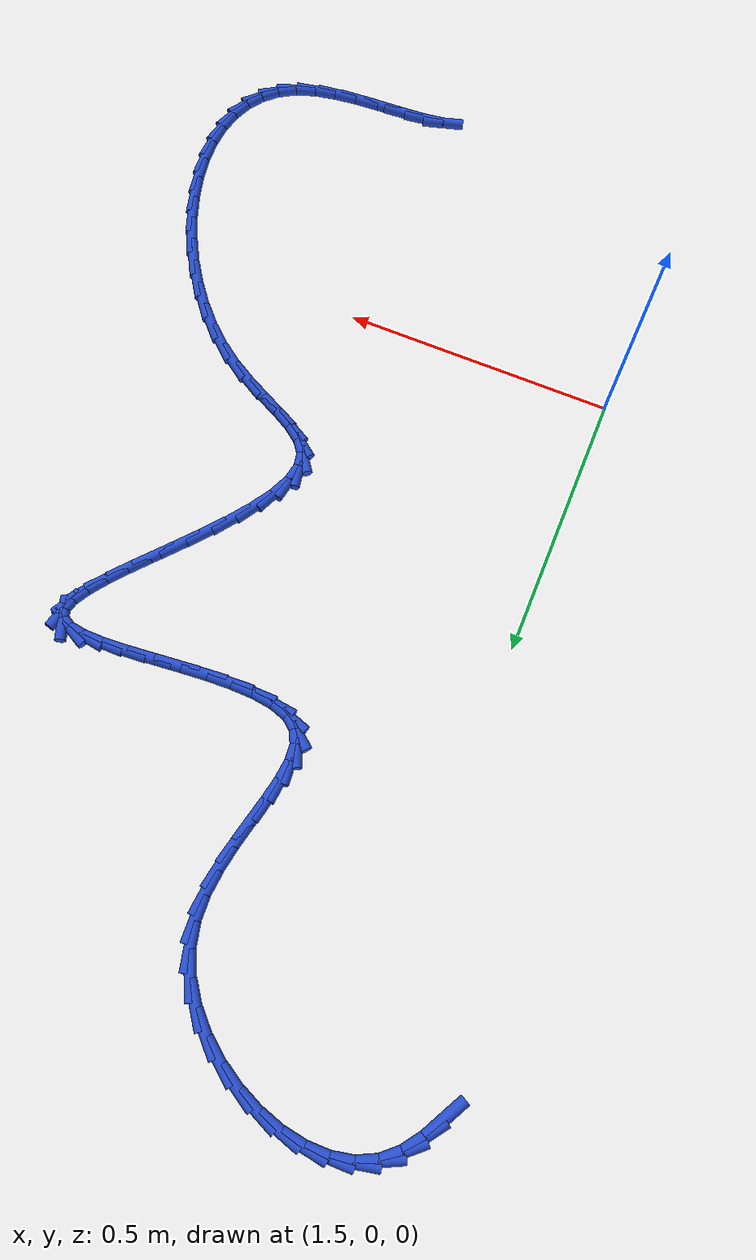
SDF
<sdf version="1.6">
 <world name="default">
  <model name="ground_plane">
   <static>1</static>
   <link name="link">
    <collision name="collision">
     <geometry><plane><normal>0 0 1</normal><size>100 100</size></plane></geometry>
     <surface><friction><ode><mu>100</mu><mu2>50</mu2></ode></friction></surface>
    </collision>
    <visual name="visual">
     <cast_shadows>0</cast_shadows>
     <geometry><plane><normal>0 0 1</normal><size>100 100</size></plane></geometry>
     <material>
      <script><uri>file://media/materials/scripts/gazebo.material</uri><name>Gazebo/WhiteGlow</name></script>
     </material>
    </visual>
   </link>
  </model>
  <model name="line">
   <link name="link_65">
    <pose>1.3440059701113316 1.2295875312424476 0.01 0 1.57 1.071464001234181</pose>
    <collision name="collision">
     <geometry><cylinder><radius>0.01</radius><length>0.08</length></cylinder></geometry>
    </collision>
    <visual name="visual">
     <material>
      <script><name>Gazebo/Blue</name><uri>file://media/materials/scripts/gazebo.material</uri></script>
     </material>
     <geometry><cylinder><radius>0.01</radius><length>0.08</length></cylinder></geometry>
    </visual>
   </link>
   <link name="link_66">
    <pose>1.363241693933876 1.2648542326269046 0.01 0 1.57 0.9397867354541178</pose>
    <collision name="collision">
     <geometry><cylinder><radius>0.01</radius><length>0.08</length></cylinder></geometry>
    </collision>
    <visual name="visual">
     <material>
      <script><name>Gazebo/Blue</name><uri>file://media/materials/scripts/gazebo.material</uri></script>
     </material>
     <geometry><cylinder><radius>0.01</radius><length>0.08</length></cylinder></geometry>
    </visual>
   </link>
   <link name="link_67">
    <pose>1.3858634243109487 1.2958148206921742 0.01 0 1.57 0.7262623180877601</pose>
    <collision name="collision">
     <geometry><cylinder><radius>0.01</radius><length>0.08</length></cylinder></geometry>
    </collision>
    <visual name="visual">
     <material>
      <script><name>Gazebo/Blue</name><uri>file://media/materials/scripts/gazebo.material</uri></script>
     </material>
     <geometry><cylinder><radius>0.01</radius><length>0.08</length></cylinder></geometry>
    </visual>
   </link>
   <link name="link_68">
    <pose>1.4132626971803164 1.3201510968237151 0.01 0 1.57 0.46096076140459136</pose>
    <collision name="collision">
     <geometry><cylinder><radius>0.01</radius><length>0.08</length></cylinder></geometry>
    </collision>
    <visual name="visual">
     <material>
      <script><name>Gazebo/Blue</name><uri>file://media/materials/scripts/gazebo.material</uri></script>
     </material>
     <geometry><cylinder><radius>0.01</radius><length>0.08</length></cylinder></geometry>
    </visual>
   </link>
   <link name="link_69">
    <pose>1.4460114517132718 1.3364156327488494 0.01 0 1.57 0.22544161819047126</pose>
    <collision name="collision">
     <geometry><cylinder><radius>0.01</radius><length>0.08</length></cylinder></geometry>
    </collision>
    <visual name="visual">
     <material>
      <script><name>Gazebo/Blue</name><uri>file://media/materials/scripts/gazebo.material</uri></script>
     </material>
     <geometry><cylinder><radius>0.01</radius><length>0.08</length></cylinder></geometry>
    </visual>
   </link>
   <link name="link_70">
    <pose>1.4830379563795635 1.3449072975904528 0.01 0 1.57 0.030618090259909747</pose>
    <collision name="collision">
     <geometry><cylinder><radius>0.01</radius><length>0.08</length></cylinder></geometry>
    </collision>
    <visual name="visual">
     <material>
      <script><name>Gazebo/Blue</name><uri>file://media/materials/scripts/gazebo.material</uri></script>
     </material>
     <geometry><cylinder><radius>0.01</radius><length>0.08</length></cylinder></geometry>
    </visual>
   </link>
   <link name="link_71">
    <pose>1.5230741828160899 1.346133513588298 0.01 0 1.57 -0.13164412909860207</pose>
    <collision name="collision">
     <geometry><cylinder><radius>0.01</radius><length>0.08</length></cylinder></geometry>
    </collision>
    <visual name="visual">
     <material>
      <script><name>Gazebo/Blue</name><uri>file://media/materials/scripts/gazebo.material</uri></script>
     </material>
     <geometry><cylinder><radius>0.01</radius><length>0.08</length></cylinder></geometry>
    </visual>
   </link>
   <link name="link_72">
    <pose>1.5648521026597506 1.3406017029821578 0.01 0 1.57 -0.27195429950035854</pose>
    <collision name="collision">
     <geometry><cylinder><radius>0.01</radius><length>0.08</length></cylinder></geometry>
    </collision>
    <visual name="visual">
     <material>
      <script><name>Gazebo/Blue</name><uri>file://media/materials/scripts/gazebo.material</uri></script>
     </material>
     <geometry><cylinder><radius>0.01</radius><length>0.08</length></cylinder></geometry>
    </visual>
   </link>
   <link name="link_73">
    <pose>1.6071036875474451 1.328819288011805 0.01 0 1.57 -0.3999542624763496</pose>
    <collision name="collision">
     <geometry><cylinder><radius>0.01</radius><length>0.08</length></cylinder></geometry>
    </collision>
    <visual name="visual">
     <material>
      <script><name>Gazebo/Blue</name><uri>file://media/materials/scripts/gazebo.material</uri></script>
     </material>
     <geometry><cylinder><radius>0.01</radius><length>0.08</length></cylinder></geometry>
    </visual>
   </link>
   <link name="link_74">
    <pose>1.6485609091160724 1.3112936909170114 0.01 0 1.57 -0.5239174390987342</pose>
    <collision name="collision">
     <geometry><cylinder><radius>0.01</radius><length>0.08</length></cylinder></geometry>
    </collision>
    <visual name="visual">
     <material>
      <script><name>Gazebo/Blue</name><uri>file://media/materials/scripts/gazebo.material</uri></script>
     </material>
     <geometry><cylinder><radius>0.01</radius><length>0.08</length></cylinder></geometry>
    </visual>
   </link>
   <link name="link_75">
    <pose>1.6879557390025315 1.2885323339375512 0.01 0 1.57 -0.6512880748055878</pose>
    <collision name="collision">
     <geometry><cylinder><radius>0.01</radius><length>0.08</length></cylinder></geometry>
    </collision>
    <visual name="visual">
     <material>
      <script><name>Gazebo/Blue</name><uri>file://media/materials/scripts/gazebo.material</uri></script>
     </material>
     <geometry><cylinder><radius>0.01</radius><length>0.08</length></cylinder></geometry>
    </visual>
   </link>
   <link name="link_76">
    <pose>1.7240201488437221 1.2610426393131962 0.01 0 1.57 -0.7892706016778485</pose>
    <collision name="collision">
     <geometry><cylinder><radius>0.01</radius><length>0.08</length></cylinder></geometry>
    </collision>
    <visual name="visual">
     <material>
      <script><name>Gazebo/Blue</name><uri>file://media/materials/scripts/gazebo.material</uri></script>
     </material>
     <geometry><cylinder><radius>0.01</radius><length>0.08</length></cylinder></geometry>
    </visual>
   </link>
   <link name="link_77">
    <pose>1.7554861102765438 1.2293320292837195 0.01 0 1.57 -0.9450254512287154</pose>
    <collision name="collision">
     <geometry><cylinder><radius>0.01</radius><length>0.08</length></cylinder></geometry>
    </collision>
    <visual name="visual">
     <material>
      <script><name>Gazebo/Blue</name><uri>file://media/materials/scripts/gazebo.material</uri></script>
     </material>
     <geometry><cylinder><radius>0.01</radius><length>0.08</length></cylinder></geometry>
    </visual>
   </link>
   <link name="link_78">
    <pose>1.7810855949378952 1.1939079260888925 0.01 0 1.57 -1.1249082423948167</pose>
    <collision name="collision">
     <geometry><cylinder><radius>0.01</radius><length>0.08</length></cylinder></geometry>
    </collision>
    <visual name="visual">
     <material>
      <script><name>Gazebo/Blue</name><uri>file://media/materials/scripts/gazebo.material</uri></script>
     </material>
     <geometry><cylinder><radius>0.01</radius><length>0.08</length></cylinder></geometry>
    </visual>
   </link>
   <link name="link_79">
    <pose>1.7995505744646758 1.1552777519684896 0.01 0 1.57 -1.3299193650254884</pose>
    <collision name="collision">
     <geometry><cylinder><radius>0.01</radius><length>0.08</length></cylinder></geometry>
    </collision>
    <visual name="visual">
     <material>
      <script><name>Gazebo/Blue</name><uri>file://media/materials/scripts/gazebo.material</uri></script>
     </material>
     <geometry><cylinder><radius>0.01</radius><length>0.08</length></cylinder></geometry>
    </visual>
   </link>
   <link name="link_80">
    <pose>1.8096997315609469 1.1139616250820863 0.01 0 1.57 -1.5176556041643143</pose>
    <collision name="collision">
     <geometry><cylinder><radius>0.01</radius><length>0.08</length></cylinder></geometry>
    </collision>
    <visual name="visual">
     <material>
      <script><name>Gazebo/Blue</name><uri>file://media/materials/scripts/gazebo.material</uri></script>
     </material>
     <geometry><cylinder><radius>0.01</radius><length>0.08</length></cylinder></geometry>
    </visual>
   </link>
   <link name="link_81">
    <pose>1.8119997373898793 1.070720956079347 0.01 0 1.57 1.4893560216095236</pose>
    <collision name="collision">
     <geometry><cylinder><radius>0.01</radius><length>0.08</length></cylinder></geometry>
    </collision>
    <visual name="visual">
     <material>
      <script><name>Gazebo/Blue</name><uri>file://media/materials/scripts/gazebo.material</uri></script>
     </material>
     <geometry><cylinder><radius>0.01</radius><length>0.08</length></cylinder></geometry>
    </visual>
   </link>
   <link name="link_82">
    <pose>1.808393099252843 1.0265332421818918 0.01 0 1.57 1.4021158363045525</pose>
    <collision name="collision">
     <geometry><cylinder><radius>0.01</radius><length>0.08</length></cylinder></geometry>
    </collision>
    <visual name="visual">
     <material>
      <script><name>Gazebo/Blue</name><uri>file://media/materials/scripts/gazebo.material</uri></script>
     </material>
     <geometry><cylinder><radius>0.01</radius><length>0.08</length></cylinder></geometry>
    </visual>
   </link>
   <link name="link_83">
    <pose>1.8008744736161992 0.9823836161028437 0.01 0 1.57 1.3553931428601542</pose>
    <collision name="collision">
     <geometry><cylinder><radius>0.01</radius><length>0.08</length></cylinder></geometry>
    </collision>
    <visual name="visual">
     <material>
      <script><name>Gazebo/Blue</name><uri>file://media/materials/scripts/gazebo.material</uri></script>
     </material>
     <geometry><cylinder><radius>0.01</radius><length>0.08</length></cylinder></geometry>
    </visual>
   </link>
   <link name="link_84">
    <pose>1.7914385169463074 0.9392572105553249 0.01 0 1.57 1.347004791097172</pose>
    <collision name="collision">
     <geometry><cylinder><radius>0.01</radius><length>0.08</length></cylinder></geometry>
    </collision>
    <visual name="visual">
     <material>
      <script><name>Gazebo/Blue</name><uri>file://media/materials/scripts/gazebo.material</uri></script>
     </material>
     <geometry><cylinder><radius>0.01</radius><length>0.08</length></cylinder></geometry>
    </visual>
   </link>
   <link name="link_85">
    <pose>1.7820798857095277 0.8981391582524569 0.01 0 1.57 1.3819464842967895</pose>
    <collision name="collision">
     <geometry><cylinder><radius>0.01</radius><length>0.08</length></cylinder></geometry>
    </collision>
    <visual name="visual">
     <material>
      <script><name>Gazebo/Blue</name><uri>file://media/materials/scripts/gazebo.material</uri></script>
     </material>
     <geometry><cylinder><radius>0.01</radius><length>0.08</length></cylinder></geometry>
    </visual>
   </link>
   <link name="link_86">
    <pose>1.7747932363722199 0.8600145919073635 0.01 0 1.57 1.476772969013434</pose>
    <collision name="collision">
     <geometry><cylinder><radius>0.01</radius><length>0.08</length></cylinder></geometry>
    </collision>
    <visual name="visual">
     <material>
      <script><name>Gazebo/Blue</name><uri>file://media/materials/scripts/gazebo.material</uri></script>
     </material>
     <geometry><cylinder><radius>0.01</radius><length>0.08</length></cylinder></geometry>
    </visual>
   </link>
   <link name="link_87">
    <pose>1.7715732254007441 0.8258686442331665 0.01 0 1.57 -1.4737386410367566</pose>
    <collision name="collision">
     <geometry><cylinder><radius>0.01</radius><length>0.08</length></cylinder></geometry>
    </collision>
    <visual name="visual">
     <material>
      <script><name>Gazebo/Blue</name><uri>file://media/materials/scripts/gazebo.material</uri></script>
     </material>
     <geometry><cylinder><radius>0.01</radius><length>0.08</length></cylinder></geometry>
    </visual>
   </link>
   <link name="link_88">
    <pose>1.7744145092614603 0.7966864479429884 0.01 0 1.57 -1.1322261838844574</pose>
    <collision name="collision">
     <geometry><cylinder><radius>0.01</radius><length>0.08</length></cylinder></geometry>
    </collision>
    <visual name="visual">
     <material>
      <script><name>Gazebo/Blue</name><uri>file://media/materials/scripts/gazebo.material</uri></script>
     </material>
     <geometry><cylinder><radius>0.01</radius><length>0.08</length></cylinder></geometry>
    </visual>
   </link>
   <link name="link_89">
    <pose>1.7853117444207287 0.7734531357499514 0.01 0 1.57 -0.6679098580904314</pose>
    <collision name="collision">
     <geometry><cylinder><radius>0.01</radius><length>0.08</length></cylinder></geometry>
    </collision>
    <visual name="visual">
     <material>
      <script><name>Gazebo/Blue</name><uri>file://media/materials/scripts/gazebo.material</uri></script>
     </material>
     <geometry><cylinder><radius>0.01</radius><length>0.08</length></cylinder></geometry>
    </visual>
   </link>
   <link name="link_90">
    <pose>1.8060905565635705 0.7570616089696681 0.01 0 1.57 -0.314948800186184</pose>
    <collision name="collision">
     <geometry><cylinder><radius>0.01</radius><length>0.08</length></cylinder></geometry>
    </collision>
    <visual name="visual">
     <material>
      <script><name>Gazebo/Blue</name><uri>file://media/materials/scripts/gazebo.material</uri></script>
     </material>
     <geometry><cylinder><radius>0.01</radius><length>0.08</length></cylinder></geometry>
    </visual>
   </link>
   <link name="link_91">
    <pose>1.8363654415289654 0.7471982691656816 0.01 0 1.57 -0.11828600860329869</pose>
    <collision name="collision">
     <geometry><cylinder><radius>0.01</radius><length>0.08</length></cylinder></geometry>
    </collision>
    <visual name="visual">
     <material>
      <script><name>Gazebo/Blue</name><uri>file://media/materials/scripts/gazebo.material</uri></script>
     </material>
     <geometry><cylinder><radius>0.01</radius><length>0.08</length></cylinder></geometry>
    </visual>
   </link>
   <link name="link_92">
    <pose>1.8741980532000302 0.7427022119696332 0.01 0 1.57 -0.007076076054685737</pose>
    <collision name="collision">
     <geometry><cylinder><radius>0.01</radius><length>0.08</length></cylinder></geometry>
    </collision>
    <visual name="visual">
     <material>
      <script><name>Gazebo/Blue</name><uri>file://media/materials/scripts/gazebo.material</uri></script>
     </material>
     <geometry><cylinder><radius>0.01</radius><length>0.08</length></cylinder></geometry>
    </visual>
   </link>
   <link name="link_93">
    <pose>1.9176178490037747 0.7423949650641917 0.01 0 1.57 0.05740488401535658</pose>
    <collision name="collision">
     <geometry><cylinder><radius>0.01</radius><length>0.08</length></cylinder></geometry>
    </collision>
    <visual name="visual">
     <material>
      <script><name>Gazebo/Blue</name><uri>file://media/materials/scripts/gazebo.material</uri></script>
     </material>
     <geometry><cylinder><radius>0.01</radius><length>0.08</length></cylinder></geometry>
    </visual>
   </link>
   <link name="link_94">
    <pose>1.9646542863672065 0.7450980561320253 0.01 0 1.57 0.0928856098669356</pose>
    <collision name="collision">
     <geometry><cylinder><radius>0.01</radius><length>0.08</length></cylinder></geometry>
    </collision>
    <visual name="visual">
     <material>
      <script><name>Gazebo/Blue</name><uri>file://media/materials/scripts/gazebo.material</uri></script>
     </material>
     <geometry><cylinder><radius>0.01</radius><length>0.08</length></cylinder></geometry>
    </visual>
   </link>
   <link name="link_95">
    <pose>2.013336822717336 0.7496330128558019 0.01 0 1.57 0.10688135362952314</pose>
    <collision name="collision">
     <geometry><cylinder><radius>0.01</radius><length>0.08</length></cylinder></geometry>
    </collision>
    <visual name="visual">
     <material>
      <script><name>Gazebo/Blue</name><uri>file://media/materials/scripts/gazebo.material</uri></script>
     </material>
     <geometry><cylinder><radius>0.01</radius><length>0.08</length></cylinder></geometry>
    </visual>
   </link>
   <link name="link_96">
    <pose>2.061694915481173 0.7548213629181901 0.01 0 1.57 0.10089283233203485</pose>
    <collision name="collision">
     <geometry><cylinder><radius>0.01</radius><length>0.08</length></cylinder></geometry>
    </collision>
    <visual name="visual">
     <material>
      <script><name>Gazebo/Blue</name><uri>file://media/materials/scripts/gazebo.material</uri></script>
     </material>
     <geometry><cylinder><radius>0.01</radius><length>0.08</length></cylinder></geometry>
    </visual>
   </link>
   <link name="link_97">
    <pose>2.1077580220857257 0.759484634001858 0.01 0 1.57 0.07069279902162402</pose>
    <collision name="collision">
     <geometry><cylinder><radius>0.01</radius><length>0.08</length></cylinder></geometry>
    </collision>
    <visual name="visual">
     <material>
      <script><name>Gazebo/Blue</name><uri>file://media/materials/scripts/gazebo.material</uri></script>
     </material>
     <geometry><cylinder><radius>0.01</radius><length>0.08</length></cylinder></geometry>
    </visual>
   </link>
   <link name="link_98">
    <pose>2.1495555999580023 0.7624443537894733 0.01 0 1.57 0.0021848357424792716</pose>
    <collision name="collision">
     <geometry><cylinder><radius>0.01</radius><length>0.08</length></cylinder></geometry>
    </collision>
    <visual name="visual">
     <material>
      <script><name>Gazebo/Blue</name><uri>file://media/materials/scripts/gazebo.material</uri></script>
     </material>
     <geometry><cylinder><radius>0.01</radius><length>0.08</length></cylinder></geometry>
    </visual>
   </link>
   <link name="link_99">
    <pose>2.185117106525016 0.7625220499637051 0.01 0 1.57 -0.1445814167518586</pose>
    <collision name="collision">
     <geometry><cylinder><radius>0.01</radius><length>0.08</length></cylinder></geometry>
    </collision>
    <visual name="visual">
     <material>
      <script><name>Gazebo/Blue</name><uri>file://media/materials/scripts/gazebo.material</uri></script>
     </material>
     <geometry><cylinder><radius>0.01</radius><length>0.08</length></cylinder></geometry>
    </visual>
   </link>
   <link name="link_100">
    <pose>2.212471999213773 0.7585392502072209 0.01 0 1.57 -0.4926867113897798</pose>
    <collision name="collision">
     <geometry><cylinder><radius>0.01</radius><length>0.08</length></cylinder></geometry>
    </collision>
    <visual name="visual">
     <material>
      <script><name>Gazebo/Blue</name><uri>file://media/materials/scripts/gazebo.material</uri></script>
     </material>
     <geometry><cylinder><radius>0.01</radius><length>0.08</length></cylinder></geometry>
    </visual>
   </link>
   <link name="link_101">
    <pose>2.2296497354512836 0.7493174822026896 0.01 0 1.57 -1.2316263897419166</pose>
    <collision name="collision">
     <geometry><cylinder><radius>0.01</radius><length>0.08</length></cylinder></geometry>
    </collision>
    <visual name="visual">
     <material>
      <script><name>Gazebo/Blue</name><uri>file://media/materials/scripts/gazebo.material</uri></script>
     </material>
     <geometry><cylinder><radius>0.01</radius><length>0.08</length></cylinder></geometry>
    </visual>
   </link>
   <link name="link_102">
    <pose>2.235090158705952 0.7338969222604996 0.01 0 1.57 1.3220202351800385</pose>
    <collision name="collision">
     <geometry><cylinder><radius>0.01</radius><length>0.08</length></cylinder></geometry>
    </collision>
    <visual name="visual">
     <material>
      <script><name>Gazebo/Blue</name><uri>file://media/materials/scripts/gazebo.material</uri></script>
     </material>
     <geometry><cylinder><radius>0.01</radius><length>0.08</length></cylinder></geometry>
    </visual>
   </link>
   <link name="link_103">
    <pose>2.2296861978708193 0.7126247203881863 0.01 0 1.57 1.0683434454452658</pose>
    <collision name="collision">
     <geometry><cylinder><radius>0.01</radius><length>0.08</length></cylinder></geometry>
    </collision>
    <visual name="visual">
     <material>
      <script><name>Gazebo/Blue</name><uri>file://media/materials/scripts/gazebo.material</uri></script>
     </material>
     <geometry><cylinder><radius>0.01</radius><length>0.08</length></cylinder></geometry>
    </visual>
   </link>
   <link name="link_104">
    <pose>2.215238319729585 0.6863315516023765 0.01 0 1.57 0.952362570168784</pose>
    <collision name="collision">
     <geometry><cylinder><radius>0.01</radius><length>0.08</length></cylinder></geometry>
    </collision>
    <visual name="visual">
     <material>
      <script><name>Gazebo/Blue</name><uri>file://media/materials/scripts/gazebo.material</uri></script>
     </material>
     <geometry><cylinder><radius>0.01</radius><length>0.08</length></cylinder></geometry>
    </visual>
   </link>
   <link name="link_105">
    <pose>2.1935484556605 0.655848871237635 0.01 0 1.57 0.8950232547650269</pose>
    <collision name="collision">
     <geometry><cylinder><radius>0.01</radius><length>0.08</length></cylinder></geometry>
    </collision>
    <visual name="visual">
     <material>
      <script><name>Gazebo/Blue</name><uri>file://media/materials/scripts/gazebo.material</uri></script>
     </material>
     <geometry><cylinder><radius>0.01</radius><length>0.08</length></cylinder></geometry>
    </visual>
   </link>
   <link name="link_106">
    <pose>2.166418537041812 0.622008134628524 0.01 0 1.57 0.8686086356535746</pose>
    <collision name="collision">
     <geometry><cylinder><radius>0.01</radius><length>0.08</length></cylinder></geometry>
    </collision>
    <visual name="visual">
     <material>
      <script><name>Gazebo/Blue</name><uri>file://media/materials/scripts/gazebo.material</uri></script>
     </material>
     <geometry><cylinder><radius>0.01</radius><length>0.08</length></cylinder></geometry>
    </visual>
   </link>
   <link name="link_107">
    <pose>2.135650495251771 0.5856407971096065 0.01 0 1.57 0.8624844350576465</pose>
    <collision name="collision">
     <geometry><cylinder><radius>0.01</radius><length>0.08</length></cylinder></geometry>
    </collision>
    <visual name="visual">
     <material>
      <script><name>Gazebo/Blue</name><uri>file://media/materials/scripts/gazebo.material</uri></script>
     </material>
     <geometry><cylinder><radius>0.01</radius><length>0.08</length></cylinder></geometry>
    </visual>
   </link>
   <link name="link_108">
    <pose>2.103046261668626 0.5475783140154447 0.01 0 1.57 0.8730332361410955</pose>
    <collision name="collision">
     <geometry><cylinder><radius>0.01</radius><length>0.08</length></cylinder></geometry>
    </collision>
    <visual name="visual">
     <material>
      <script><name>Gazebo/Blue</name><uri>file://media/materials/scripts/gazebo.material</uri></script>
     </material>
     <geometry><cylinder><radius>0.01</radius><length>0.08</length></cylinder></geometry>
    </visual>
   </link>
   <link name="link_109">
    <pose>2.0704077676706256 0.5086521406806027 0.01 0 1.57 0.9007038979149533</pose>
    <collision name="collision">
     <geometry><cylinder><radius>0.01</radius><length>0.08</length></cylinder></geometry>
    </collision>
    <visual name="visual">
     <material>
      <script><name>Gazebo/Blue</name><uri>file://media/materials/scripts/gazebo.material</uri></script>
     </material>
     <geometry><cylinder><radius>0.01</radius><length>0.08</length></cylinder></geometry>
    </visual>
   </link>
   <link name="link_110">
    <pose>2.03953694463602 0.4696937324396433 0.01 0 1.57 0.9497723365709663</pose>
    <collision name="collision">
     <geometry><cylinder><radius>0.01</radius><length>0.08</length></cylinder></geometry>
    </collision>
    <visual name="visual">
     <material>
      <script><name>Gazebo/Blue</name><uri>file://media/materials/scripts/gazebo.material</uri></script>
     </material>
     <geometry><cylinder><radius>0.01</radius><length>0.08</length></cylinder></geometry>
    </visual>
   </link>
   <link name="link_111">
    <pose>2.012235723943058 0.431534544627129 0.01 0 1.57 1.030123643313595</pose>
    <collision name="collision">
     <geometry><cylinder><radius>0.01</radius><length>0.08</length></cylinder></geometry>
    </collision>
    <visual name="visual">
     <material>
      <script><name>Gazebo/Blue</name><uri>file://media/materials/scripts/gazebo.material</uri></script>
     </material>
     <geometry><cylinder><radius>0.01</radius><length>0.08</length></cylinder></geometry>
    </visual>
   </link>
   <link name="link_112">
    <pose>1.990306036969987 0.3950060325776223 0.01 0 1.57 1.1620337383163282</pose>
    <collision name="collision">
     <geometry><cylinder><radius>0.01</radius><length>0.08</length></cylinder></geometry>
    </collision>
    <visual name="visual">
     <material>
      <script><name>Gazebo/Blue</name><uri>file://media/materials/scripts/gazebo.material</uri></script>
     </material>
     <geometry><cylinder><radius>0.01</radius><length>0.08</length></cylinder></geometry>
    </visual>
   </link>
   <link name="link_113">
    <pose>1.9755498150950594 0.3609396516256874 0.01 0 1.57 1.3851053900525272</pose>
    <collision name="collision">
     <geometry><cylinder><radius>0.01</radius><length>0.08</length></cylinder></geometry>
    </collision>
    <visual name="visual">
     <material>
      <script><name>Gazebo/Blue</name><uri>file://media/materials/scripts/gazebo.material</uri></script>
     </material>
     <geometry><cylinder><radius>0.01</radius><length>0.08</length></cylinder></geometry>
    </visual>
   </link>
   <link name="link_114">
    <pose>1.9697689896965218 0.33016685710588667 0.01 0 1.57 -1.3859672125733546</pose>
    <collision name="collision">
     <geometry><cylinder><radius>0.01</radius><length>0.08</length></cylinder></geometry>
    </collision>
    <visual name="visual">
     <material>
      <script><name>Gazebo/Blue</name><uri>file://media/materials/scripts/gazebo.material</uri></script>
     </material>
     <geometry><cylinder><radius>0.01</radius><length>0.08</length></cylinder></geometry>
    </visual>
   </link>
   <link name="link_115">
    <pose>1.9747525410396194 0.3035115724765384 0.01 0 1.57 -0.9459441404367588</pose>
    <collision name="collision">
     <geometry><cylinder><radius>0.01</radius><length>0.08</length></cylinder></geometry>
    </collision>
    <visual name="visual">
     <material>
      <script><name>Gazebo/Blue</name><uri>file://media/materials/scripts/gazebo.material</uri></script>
     </material>
     <geometry><cylinder><radius>0.01</radius><length>0.08</length></cylinder></geometry>
    </visual>
   </link>
   <link name="link_116">
    <pose>1.9909681117844142 0.28102928134720817 0.01 0 1.57 -0.6577010027150647</pose>
    <collision name="collision">
     <geometry><cylinder><radius>0.01</radius><length>0.08</length></cylinder></geometry>
    </collision>
    <visual name="visual">
     <material>
      <script><name>Gazebo/Blue</name><uri>file://media/materials/scripts/gazebo.material</uri></script>
     </material>
     <geometry><cylinder><radius>0.01</radius><length>0.08</length></cylinder></geometry>
    </visual>
   </link>
   <link name="link_117">
    <pose>2.0164396888375453 0.2613543297996969 0.01 0 1.57 -0.5150271343413755</pose>
    <collision name="collision">
     <geometry><cylinder><radius>0.01</radius><length>0.08</length></cylinder></geometry>
    </collision>
    <visual name="visual">
     <material>
      <script><name>Gazebo/Blue</name><uri>file://media/materials/scripts/gazebo.material</uri></script>
     </material>
     <geometry><cylinder><radius>0.01</radius><length>0.08</length></cylinder></geometry>
    </visual>
   </link>
   <link name="link_118">
    <pose>2.048926881893507 0.2429673121538664 0.01 0 1.57 -0.463374482573851</pose>
    <collision name="collision">
     <geometry><cylinder><radius>0.01</radius><length>0.08</length></cylinder></geometry>
    </collision>
    <visual name="visual">
     <material>
      <script><name>Gazebo/Blue</name><uri>file://media/materials/scripts/gazebo.material</uri></script>
     </material>
     <geometry><cylinder><radius>0.01</radius><length>0.08</length></cylinder></geometry>
    </visual>
   </link>
   <link name="link_119">
    <pose>2.086189300646796 0.22434882272957785 0.01 0 1.57 -0.47306552905766897</pose>
    <collision name="collision">
     <geometry><cylinder><radius>0.01</radius><length>0.08</length></cylinder></geometry>
    </collision>
    <visual name="visual">
     <material>
      <script><name>Gazebo/Blue</name><uri>file://media/materials/scripts/gazebo.material</uri></script>
     </material>
     <geometry><cylinder><radius>0.01</radius><length>0.08</length></cylinder></geometry>
    </visual>
   </link>
   <link name="link_120">
    <pose>2.125986554791905 0.20397945584669322 0.01 0 1.57 -0.532766664448061</pose>
    <collision name="collision">
     <geometry><cylinder><radius>0.01</radius><length>0.08</length></cylinder></geometry>
    </collision>
    <visual name="visual">
     <material>
      <script><name>Gazebo/Blue</name><uri>file://media/materials/scripts/gazebo.material</uri></script>
     </material>
     <geometry><cylinder><radius>0.01</radius><length>0.08</length></cylinder></geometry>
    </visual>
   </link>
   <link name="link_121">
    <pose>2.1660782540233297 0.18033980582507392 0.01 0 1.57 -0.6329355787849597</pose>
    <collision name="collision">
     <geometry><cylinder><radius>0.01</radius><length>0.08</length></cylinder></geometry>
    </collision>
    <visual name="visual">
     <material>
      <script><name>Gazebo/Blue</name><uri>file://media/materials/scripts/gazebo.material</uri></script>
     </material>
     <geometry><cylinder><radius>0.01</radius><length>0.08</length></cylinder></geometry>
    </visual>
   </link>
   <link name="link_122">
    <pose>2.2044664451903717 0.15217744017217352 0.01 0 1.57 -0.7346902154263425</pose>
    <collision name="collision">
     <geometry><cylinder><radius>0.01</radius><length>0.08</length></cylinder></geometry>
    </collision>
    <visual name="visual">
     <material>
      <script><name>Gazebo/Blue</name><uri>file://media/materials/scripts/gazebo.material</uri></script>
     </material>
     <geometry><cylinder><radius>0.01</radius><length>0.08</length></cylinder></geometry>
    </visual>
   </link>
   <link name="link_123">
    <pose>2.2404509529462904 0.119669046768458 0.01 0 1.57 -0.8269258140705377</pose>
    <collision name="collision">
     <geometry><cylinder><radius>0.01</radius><length>0.08</length></cylinder></geometry>
    </collision>
    <visual name="visual">
     <material>
      <script><name>Gazebo/Blue</name><uri>file://media/materials/scripts/gazebo.material</uri></script>
     </material>
     <geometry><cylinder><radius>0.01</radius><length>0.08</length></cylinder></geometry>
    </visual>
   </link>
   <link name="link_124">
    <pose>2.273764041721147 0.08346751866082484 0.01 0 1.57 -0.9120897467813653</pose>
    <collision name="collision">
     <geometry><cylinder><radius>0.01</radius><length>0.08</length></cylinder></geometry>
    </collision>
    <visual name="visual">
     <material>
      <script><name>Gazebo/Blue</name><uri>file://media/materials/scripts/gazebo.material</uri></script>
     </material>
     <geometry><cylinder><radius>0.01</radius><length>0.08</length></cylinder></geometry>
    </visual>
   </link>
   <link name="link_125">
    <pose>2.3041382723968553 0.04422607535065616 0.01 0 1.57 -0.9925717559387812</pose>
    <collision name="collision">
     <geometry><cylinder><radius>0.01</radius><length>0.08</length></cylinder></geometry>
    </collision>
    <visual name="visual">
     <material>
      <script><name>Gazebo/Blue</name><uri>file://media/materials/scripts/gazebo.material</uri></script>
     </material>
     <geometry><cylinder><radius>0.01</radius><length>0.08</length></cylinder></geometry>
    </visual>
   </link>
   <link name="link_126">
    <pose>2.331306205855329 0.0025979363393372626 0.01 0 1.57 -1.0706961813701086</pose>
    <collision name="collision">
     <geometry><cylinder><radius>0.01</radius><length>0.08</length></cylinder></geometry>
    </collision>
    <visual name="visual">
     <material>
      <script><name>Gazebo/Blue</name><uri>file://media/materials/scripts/gazebo.material</uri></script>
     </material>
     <geometry><cylinder><radius>0.01</radius><length>0.08</length></cylinder></geometry>
    </visual>
   </link>
   <link name="link_127">
    <pose>2.3550004029784835 -0.04076367887174973 0.01 0 1.57 -1.148800132797987</pose>
    <collision name="collision">
     <geometry><cylinder><radius>0.01</radius><length>0.08</length></cylinder></geometry>
    </collision>
    <visual name="visual">
     <material>
      <script><name>Gazebo/Blue</name><uri>file://media/materials/scripts/gazebo.material</uri></script>
     </material>
     <geometry><cylinder><radius>0.01</radius><length>0.08</length></cylinder></geometry>
    </visual>
   </link>
   <link name="link_128">
    <pose>2.374953424648233 -0.08520555078122152 0.01 0 1.57 -1.2293585796380588</pose>
    <collision name="collision">
     <geometry><cylinder><radius>0.01</radius><length>0.08</length></cylinder></geometry>
    </collision>
    <visual name="visual">
     <material>
      <script><name>Gazebo/Blue</name><uri>file://media/materials/scripts/gazebo.material</uri></script>
     </material>
     <geometry><cylinder><radius>0.01</radius><length>0.08</length></cylinder></geometry>
    </visual>
   </link>
   <link name="link_129">
    <pose>2.3908978317464937 -0.130074459887695 0.01 0 1.57 -1.3151436855197822</pose>
    <collision name="collision">
     <geometry><cylinder><radius>0.01</radius><length>0.08</length></cylinder></geometry>
    </collision>
    <visual name="visual">
     <material>
      <script><name>Gazebo/Blue</name><uri>file://media/materials/scripts/gazebo.material</uri></script>
     </material>
     <geometry><cylinder><radius>0.01</radius><length>0.08</length></cylinder></geometry>
    </visual>
   </link>
   <link name="link_130">
    <pose>2.4025661851551785 -0.174717186689787 0.01 0 1.57 -1.409407896029552</pose>
    <collision name="collision">
     <geometry><cylinder><radius>0.01</radius><length>0.08</length></cylinder></geometry>
    </collision>
    <visual name="visual">
     <material>
      <script><name>Gazebo/Blue</name><uri>file://media/materials/scripts/gazebo.material</uri></script>
     </material>
     <geometry><cylinder><radius>0.01</radius><length>0.08</length></cylinder></geometry>
    </visual>
   </link>
   <link name="link_131">
    <pose>2.4096910457562037 -0.21848051168611426 0.01 0 1.57 -1.516058494116405</pose>
    <collision name="collision">
     <geometry><cylinder><radius>0.01</radius><length>0.08</length></cylinder></geometry>
    </collision>
    <visual name="visual">
     <material>
      <script><name>Gazebo/Blue</name><uri>file://media/materials/scripts/gazebo.material</uri></script>
     </material>
     <geometry><cylinder><radius>0.01</radius><length>0.08</length></cylinder></geometry>
    </visual>
   </link>
   <link name="link_132">
    <pose>2.412004974431482 -0.2607112153752946 0.01 0 1.57 1.5018720444710394</pose>
    <collision name="collision">
     <geometry><cylinder><radius>0.01</radius><length>0.08</length></cylinder></geometry>
    </collision>
    <visual name="visual">
     <material>
      <script><name>Gazebo/Blue</name><uri>file://media/materials/scripts/gazebo.material</uri></script>
     </material>
     <geometry><cylinder><radius>0.01</radius><length>0.08</length></cylinder></geometry>
    </visual>
   </link>
   <link name="link_133">
    <pose>2.40924053206293 -0.3007560782559429 0.01 0 1.57 1.356170203164111</pose>
    <collision name="collision">
     <geometry><cylinder><radius>0.01</radius><length>0.08</length></cylinder></geometry>
    </collision>
    <visual name="visual">
     <material>
      <script><name>Gazebo/Blue</name><uri>file://media/materials/scripts/gazebo.material</uri></script>
     </material>
     <geometry><cylinder><radius>0.01</radius><length>0.08</length></cylinder></geometry>
    </visual>
   </link>
   <link name="link_134">
    <pose>2.4011302795324614 -0.3379618808266769 0.01 0 1.57 1.1842166837570187</pose>
    <collision name="collision">
     <geometry><cylinder><radius>0.01</radius><length>0.08</length></cylinder></geometry>
    </collision>
    <visual name="visual">
     <material>
      <script><name>Gazebo/Blue</name><uri>file://media/materials/scripts/gazebo.material</uri></script>
     </material>
     <geometry><cylinder><radius>0.01</radius><length>0.08</length></cylinder></geometry>
    </visual>
   </link>
   <link name="link_135">
    <pose>2.387406777721991 -0.3716754035861134 0.01 0 1.57 0.9853226059038007</pose>
    <collision name="collision">
     <geometry><cylinder><radius>0.01</radius><length>0.08</length></cylinder></geometry>
    </collision>
    <visual name="visual">
     <material>
      <script><name>Gazebo/Blue</name><uri>file://media/materials/scripts/gazebo.material</uri></script>
     </material>
     <geometry><cylinder><radius>0.01</radius><length>0.08</length></cylinder></geometry>
    </visual>
   </link>
   <link name="link_136">
    <pose>2.367802587513433 -0.4012434270328692 0.01 0 1.57 0.7659433434049476</pose>
    <collision name="collision">
     <geometry><cylinder><radius>0.01</radius><length>0.08</length></cylinder></geometry>
    </collision>
    <visual name="visual">
     <material>
      <script><name>Gazebo/Blue</name><uri>file://media/materials/scripts/gazebo.material</uri></script>
     </material>
     <geometry><cylinder><radius>0.01</radius><length>0.08</length></cylinder></geometry>
    </visual>
   </link>
   <link name="link_137">
    <pose>2.342050269788704 -0.42601273166556114 0.01 0 1.57 0.5407996727058277</pose>
    <collision name="collision">
     <geometry><cylinder><radius>0.01</radius><length>0.08</length></cylinder></geometry>
    </collision>
    <visual name="visual">
     <material>
      <script><name>Gazebo/Blue</name><uri>file://media/materials/scripts/gazebo.material</uri></script>
     </material>
     <geometry><cylinder><radius>0.01</radius><length>0.08</length></cylinder></geometry>
    </visual>
   </link>
   <link name="link_138">
    <pose>2.3098823854297157 -0.44533009798280604 0.01 0 1.57 0.33291463857843684</pose>
    <collision name="collision">
     <geometry><cylinder><radius>0.01</radius><length>0.08</length></cylinder></geometry>
    </collision>
    <visual name="visual">
     <material>
      <script><name>Gazebo/Blue</name><uri>file://media/materials/scripts/gazebo.material</uri></script>
     </material>
     <geometry><cylinder><radius>0.01</radius><length>0.08</length></cylinder></geometry>
    </visual>
   </link>
   <link name="link_139">
    <pose>2.271208829116029 -0.45870282300764953 0.01 0 1.57 0.18637241171991922</pose>
    <collision name="collision">
     <geometry><cylinder><radius>0.01</radius><length>0.08</length></cylinder></geometry>
    </collision>
    <visual name="visual">
     <material>
      <script><name>Gazebo/Blue</name><uri>file://media/materials/scripts/gazebo.material</uri></script>
     </material>
     <geometry><cylinder><radius>0.01</radius><length>0.08</length></cylinder></geometry>
    </visual>
   </link>
   <link name="link_140">
    <pose>2.227402965046503 -0.46696288661529006 0.01 0 1.57 0.09855981641934007</pose>
    <collision name="collision">
     <geometry><cylinder><radius>0.01</radius><length>0.08</length></cylinder></geometry>
    </collision>
    <visual name="visual">
     <material>
      <script><name>Gazebo/Blue</name><uri>file://media/materials/scripts/gazebo.material</uri></script>
     </material>
     <geometry><cylinder><radius>0.01</radius><length>0.08</length></cylinder></geometry>
    </visual>
   </link>
   <link name="link_141">
    <pose>2.180559076030032 -0.47159481969610456 0.01 0 1.57 0.05212457606911901</pose>
    <collision name="collision">
     <geometry><cylinder><radius>0.01</radius><length>0.08</length></cylinder></geometry>
    </collision>
    <visual name="visual">
     <material>
      <script><name>Gazebo/Blue</name><uri>file://media/materials/scripts/gazebo.material</uri></script>
     </material>
     <geometry><cylinder><radius>0.01</radius><length>0.08</length></cylinder></geometry>
    </visual>
   </link>
   <link name="link_142">
    <pose>2.1327764952721138 -0.474087724587772 0.01 0 1.57 0.03950972425449704</pose>
    <collision name="collision">
     <geometry><cylinder><radius>0.01</radius><length>0.08</length></cylinder></geometry>
    </collision>
    <visual name="visual">
     <material>
      <script><name>Gazebo/Blue</name><uri>file://media/materials/scripts/gazebo.material</uri></script>
     </material>
     <geometry><cylinder><radius>0.01</radius><length>0.08</length></cylinder></geometry>
    </visual>
   </link>
   <link name="link_143">
    <pose>2.086154555978251 -0.4759307036279717 0.01 0 1.57 0.06177632168499052</pose>
    <collision name="collision">
     <geometry><cylinder><radius>0.01</radius><length>0.08</length></cylinder></geometry>
    </collision>
    <visual name="visual">
     <material>
      <script><name>Gazebo/Blue</name><uri>file://media/materials/scripts/gazebo.material</uri></script>
     </material>
     <geometry><cylinder><radius>0.01</radius><length>0.08</length></cylinder></geometry>
    </visual>
   </link>
   <link name="link_144">
    <pose>2.042792591353943 -0.4786128591543827 0.01 0 1.57 0.13108824128422197</pose>
    <collision name="collision">
     <geometry><cylinder><radius>0.01</radius><length>0.08</length></cylinder></geometry>
    </collision>
    <visual name="visual">
     <material>
      <script><name>Gazebo/Blue</name><uri>file://media/materials/scripts/gazebo.material</uri></script>
     </material>
     <geometry><cylinder><radius>0.01</radius><length>0.08</length></cylinder></geometry>
    </visual>
   </link>
   <link name="link_145">
    <pose>2.0047899346046916 -0.48362329350468386 0.01 0 1.57 0.2813527292088927</pose>
    <collision name="collision">
     <geometry><cylinder><radius>0.01</radius><length>0.08</length></cylinder></geometry>
    </collision>
    <visual name="visual">
     <material>
      <script><name>Gazebo/Blue</name><uri>file://media/materials/scripts/gazebo.material</uri></script>
     </material>
     <geometry><cylinder><radius>0.01</radius><length>0.08</length></cylinder></geometry>
    </visual>
   </link>
  </model>
 </world>
</sdf>
